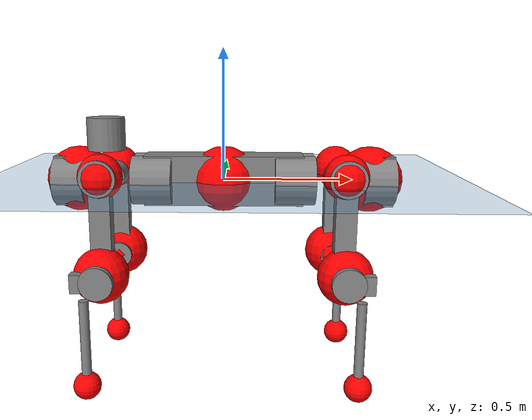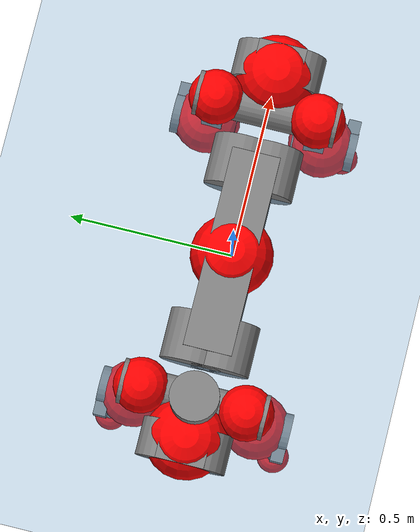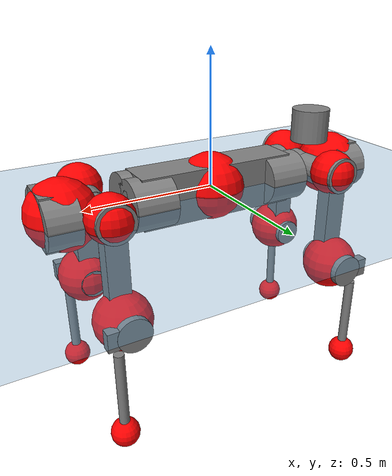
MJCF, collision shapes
<mujoco model="anymal_c">
  <compiler angle="radian" assetdir="assets" balanceinertia="true" inertiafromgeom="false"/>

  <option timestep="0.005" density="1.2" viscosity="2e-05"/>

  <size nkey="1"/>

  <visual>
    <quality shadowsize="8192"/>
    <map shadowclip="0.5"/>
  </visual>

  <default>
    <default class="/">
      <material specular="0" shininess="0.25"/>
      <geom contype="0" conaffinity="0" group="1" solref="-1000 -80"/>
      <site size="0.01 0.005 0.005" group="5"/>
      <general forcelimited="true" forcerange="-80 80" biastype="affine" gainprm="80" biasprm="0 -80 -2"/>
      <default class="anymal_c">
        <joint armature="0.01" damping="0.01" frictionloss="0.1"/>
        <default class="visual">
          <geom type="mesh" group="2"/>
          <default class="visual_zflip"/>
        </default>
        <default class="collision">
          <geom type="cylinder" group="3"/>
          <default class="foot">
            <geom size="0.03 0 0" type="sphere" condim="6" priority="1" friction="0.8 0.02 0.01" solimp="0.015 1 0.03"/>
          </default>
        </default>
      </default>
      <default class="reward_collision_sphere">
        <geom group="5" rgba="1 0 0 1"/>
      </default>
    </default>
  </default>

  <asset>
    <texture type="skybox" colorspace="auto" name="//unnamed_texture_0" builtin="gradient" rgb1="0.95 0.95 0.95" rgb2="0.95 0.95 0.95" width="100" height="600"/>
    <texture type="2d" colorspace="auto" name="texplane" builtin="checker" rgb1="0.345 0.575 0.748" rgb2="0.345 0.575 0.748" markrgb="1 1 1" width="512" height="512"/>
    <texture type="2d" colorspace="linear" name="base" file="base.png"/>
    <texture type="2d" colorspace="linear" name="top_shell" file="top_shell.png"/>
    <texture type="2d" colorspace="linear" name="bottom_shell" file="bottom_shell.png"/>
    <texture type="2d" colorspace="linear" name="remote" file="remote.png"/>
    <texture type="2d" colorspace="linear" name="hatch" file="hatch.png"/>
    <texture type="2d" colorspace="linear" name="handle" file="handle.png"/>
    <texture type="2d" colorspace="linear" name="face" file="face.png"/>
    <texture type="2d" colorspace="linear" name="battery" file="battery.png"/>
    <texture type="2d" colorspace="linear" name="lidar_cage" file="lidar_cage.png"/>
    <texture type="2d" colorspace="linear" name="depth_camera" file="depth_camera.png"/>
    <texture type="2d" colorspace="linear" name="wide_angle_camera" file="wide_angle_camera.png"/>
    <texture type="2d" colorspace="linear" name="lidar" file="lidar.png"/>
    <texture type="2d" colorspace="linear" name="drive" file="drive.png"/>
    <texture type="2d" colorspace="linear" name="hip_l" file="hip_l.png"/>
    <texture type="2d" colorspace="linear" name="shank_l" file="shank_l.png"/>
    <texture type="2d" colorspace="linear" name="foot" file="foot.png"/>
    <texture type="2d" colorspace="linear" name="thigh" file="thigh.png"/>
    <texture type="2d" colorspace="linear" name="shank_r" file="shank_r.png"/>
    <texture type="2d" colorspace="linear" name="hip_r" file="hip_r.png"/>
    <material name="MatPlane" class="/" texture="texplane" texuniform="true" texrepeat="2 2" specular="0.9" shininess="0.5"/>
    <material name="black_plastic" class="/" rgba="0.007 0.007 0.007 1"/>
    <material name="green" class="/" rgba="0.052 0.178 0.033 1"/>
    <material name="red" class="/" rgba="0.178 0.006 0.005 1"/>
    <material name="yellow" class="/" rgba="0.178 0.119 0.006 1"/>
    <material name="lwl" class="/" rgba="0.8 0.8 0.8 1"/>
    <material name="base" class="/" texture="base"/>
    <material name="top_shell" class="/" texture="top_shell"/>
    <material name="bottom_shell" class="/" texture="bottom_shell"/>
    <material name="hip_l" class="/" texture="hip_l"/>
    <material name="thigh" class="/" texture="thigh"/>
    <material name="shank_l" class="/" texture="shank_l"/>
    <material name="foot" class="/" texture="foot"/>
    <material name="hip_r" class="/" texture="hip_r"/>
    <material name="shank" class="/" texture="shank_r"/>
    <material name="hatch" class="/" texture="hatch"/>
    <material name="remote" class="/" texture="remote"/>
    <material name="handle" class="/" texture="handle"/>
    <material name="face" class="/" texture="face"/>
    <material name="depth_camera" class="/" texture="depth_camera"/>
    <material name="wide_angle_camera" class="/" texture="wide_angle_camera"/>
    <material name="battery" class="/" texture="battery"/>
    <material name="lidar_cage" class="/" texture="lidar_cage"/>
    <material name="lidar" class="/" texture="lidar"/>
    <material name="drive" class="/" texture="drive"/>
    <mesh name="base_0" class="/" file="base_0.obj"/>
    <mesh name="base_1" class="/" file="base_1.obj"/>
    <mesh name="base_2" class="/" file="base_2.obj"/>
    <mesh name="base_3" class="/" file="base_3.obj"/>
    <mesh name="base_4" class="/" file="base_4.obj"/>
    <mesh name="base_5" class="/" file="base_5.obj"/>
    <mesh name="top_shell" class="/" file="top_shell.obj"/>
    <mesh name="bottom_shell" class="/" file="bottom_shell.obj"/>
    <mesh name="remote" class="/" file="remote.obj"/>
    <mesh name="handle" class="/" file="handle.obj"/>
    <mesh name="face" class="/" file="face.obj"/>
    <mesh name="wide_angle_camera" class="/" file="wide_angle_camera.obj"/>
    <mesh name="depth_camera" class="/" file="depth_camera.obj"/>
    <mesh name="battery" class="/" file="battery.obj"/>
    <mesh name="lidar_cage" class="/" file="lidar_cage.obj"/>
    <mesh name="lidar" class="/" file="lidar.obj"/>
    <mesh name="drive" class="/" file="drive.obj"/>
    <mesh name="hip_l" class="/" file="hip_l.obj"/>
    <mesh name="thigh" class="/" file="thigh.obj"/>
    <mesh name="shank_l" class="/" file="shank_l.obj"/>
    <mesh name="foot" class="/" file="foot.obj"/>
    <mesh name="hip_r" class="/" file="hip_r.obj"/>
    <mesh name="hatch" class="/" file="hatch.obj"/>
    <mesh name="shank_r" class="/" file="shank_r.obj"/>
  </asset>

  <worldbody>
    <geom name="floor" class="/" size="100 100 0.125" type="plane" group="0" material="MatPlane"/>
    <light name="toplight_shadow" class="/" pos="0 0 5" dir="0.0990148 0.0990148 -0.990148" type="directional" ambient="0.04 0.04 0.04" diffuse="0.55 0.55 0.55" specular="0.12 0.12 0.12"/>
    <light name="toplight_fill" class="/" pos="0 0 5" dir="0.0990148 0.0990148 -0.990148" type="directional" castshadow="false" ambient="0.04 0.04 0.04" diffuse="0.3 0.3 0.3" specular="0.08 0.08 0.08"/>
    <body name="trunk" childclass="anymal_c" pos="0.00213168 0.000726772 0.00271453" quat="0.999999 -0.000865759 -0.000621311 -0.000334144">
      <inertial pos="0.00684087 0.00525506 0.0650703" quat="0.498075 0.498365 0.50096 0.502586" mass="22.5918" diaginertia="1.83864 0.0451369 0.73394"/>
      <joint name="//unnamed_joint_0" type="free" armature="0" damping="0" frictionloss="0"/>
      <geom name="//unnamed_geom_1" class="visual" material="green" mesh="base_0"/>
      <geom name="//unnamed_geom_2" class="visual" material="yellow" mesh="base_1"/>
      <geom name="//unnamed_geom_3" class="visual" material="red" mesh="base_2"/>
      <geom name="//unnamed_geom_4" class="visual" material="black_plastic" mesh="base_3"/>
      <geom name="//unnamed_geom_5" class="visual" material="lwl" mesh="base_4"/>
      <geom name="//unnamed_geom_6" class="visual" material="base" mesh="base_5"/>
      <geom name="trunk_1" class="collision" size="0.305995 0.0738608 0.0949639" type="box"/>
      <geom name="trunk_2" class="collision" size="0.0949639 0.0764987" pos="0.273308 0.0420987 0" quat="0.707107 0 0.707107 0"/>
      <geom name="trunk_3" class="collision" size="0.0949639 0.0764987" pos="-0.273308 0.0420987 0" quat="0.707107 0 0.707107 0"/>
      <geom name="trunk_4" class="collision" size="0.0949639 0.0764987" pos="0.273308 -0.0420987 0" quat="0.707107 0 0.707107 0"/>
      <geom name="trunk_5" class="collision" size="0.0949639 0.0764987" pos="-0.273308 -0.0420987 0" quat="0.707107 0 0.707107 0"/>
      <geom name="//unnamed_geom_12" class="visual" material="top_shell" mesh="top_shell"/>
      <geom name="//unnamed_geom_13" class="visual" material="bottom_shell" mesh="bottom_shell"/>
      <geom name="//unnamed_geom_14" class="visual" material="remote" mesh="remote"/>
      <geom name="//unnamed_geom_15" class="visual" material="handle" mesh="handle"/>
      <geom name="//unnamed_geom_16" class="visual" pos="0.520855 0 0" quat="1 0 0 0" material="face" mesh="face"/>
      <geom name="trunk_6" class="collision" size="0.0580335 0.0738608 0.0949639" pos="0.589967 0 0" type="box"/>
      <geom name="//unnamed_geom_18" class="collision" size="0.0949639 0.0580335" pos="0.589967 0.0420987 0" quat="0.707107 0 0.707107 0"/>
      <geom name="//unnamed_geom_19" class="collision" size="0.0949639 0.0580335" pos="0.589967 -0.0420987 0" quat="0.707107 0 0.707107 0"/>
      <geom name="//unnamed_geom_20" class="visual" pos="0.580105 0 -0.0385648" quat="0.965926 0 0.258819 0" material="depth_camera" mesh="depth_camera"/>
      <geom name="//unnamed_geom_21" class="visual" pos="0.644629 0 0.0195728" material="wide_angle_camera" mesh="wide_angle_camera"/>
      <geom name="//unnamed_geom_22" class="visual_zflip" pos="-0.520855 0 0" quat="0 0 0 1" material="face" mesh="face"/>
      <geom name="trunk_7" class="collision" size="0.0580335 0.0738608 0.0949639" pos="-0.589967 0 0" quat="0 0 0 1" type="box"/>
      <geom name="//unnamed_geom_24" class="collision" size="0.0949639 0.0580335" pos="-0.589967 -0.0420987 0" quat="0 -0.707107 0 0.707107"/>
      <geom name="//unnamed_geom_25" class="collision" size="0.0949639 0.0580335" pos="-0.589967 0.0420987 0" quat="0 -0.707107 0 0.707107"/>
      <geom name="//unnamed_geom_26" class="visual" pos="-0.580105 0 -0.0385648" quat="0 -0.258819 0 0.965926" material="depth_camera" mesh="depth_camera"/>
      <geom name="//unnamed_geom_27" class="visual_zflip" pos="-0.644629 0 0.0195728" quat="0 0 0 1" material="wide_angle_camera" mesh="wide_angle_camera"/>
      <geom name="//unnamed_geom_28" class="visual" material="battery" mesh="battery"/>
      <geom name="//unnamed_geom_29" class="visual" pos="0 0.0373886 0.0375953" quat="0.683013 -0.183013 0.183013 0.683013" material="depth_camera" mesh="depth_camera"/>
      <geom name="//unnamed_geom_30" class="visual" pos="0 -0.0373886 0.0375953" quat="0.683013 0.183013 0.183013 -0.683013" material="depth_camera" mesh="depth_camera"/>
      <geom name="//unnamed_geom_31" class="visual" pos="-0.457397 0 0.0960989" quat="1 0 0 0" material="lidar_cage" mesh="lidar_cage"/>
      <geom name="trunk_8" class="collision" size="0.0738608 0.0633093" pos="-0.457397 0 0.174547"/>
      <geom name="//unnamed_geom_33" class="visual" pos="-0.457397 -0.000257401 0.185922" quat="0.707107 0 0 -0.707107" material="lidar" mesh="lidar"/>
      <geom name="//unnamed_geom_34" class="visual" pos="0.37685 0.0627974 -1.21796e-08" quat="0.258819 0.965926 0 0" material="drive" mesh="drive"/>
      <geom name="//unnamed_geom_35" class="visual" pos="0.37685 -0.0627974 1.21796e-08" quat="0.258819 -0.965926 0 0" material="drive" mesh="drive"/>
      <geom name="//unnamed_geom_36" class="visual" pos="-0.37685 0.0627974 1.21796e-08" quat="0 0 0.965926 -0.258819" material="drive" mesh="drive"/>
      <geom name="//unnamed_geom_37" class="visual" pos="-0.37685 -0.0627974 -1.21796e-08" quat="0 0 -0.965926 -0.258819" material="drive" mesh="drive"/>
      <geom name="//unnamed_geom_38" class="visual" pos="0.145764 0 0.0954452" quat="1 0 0 0" material="hatch" mesh="hatch"/>
      <geom name="//unnamed_geom_39" class="reward_collision_sphere" size="0.126619"/>
      <geom name="//unnamed_geom_40" class="reward_collision_sphere" size="0.126619" pos="0.565464 0 0"/>
      <geom name="//unnamed_geom_41" class="reward_collision_sphere" size="0.126619" pos="-0.565464 0 0"/>
      <site name="imu" pos="0.349041 -0.00628456 0.0345415" size="0.0105515"/>
      <camera name="track" pos="0 -1.20282 0" quat="0.707107 0.707107 0 0" mode="trackcom"/>
      <camera name="ego_camera" pos="0.565464 0 -0.0522987" quat="-0.5 -0.5 0.5 0.5"/>
      <body name="LF_HIP" pos="0.379636 0.0619488 -0.000962549" quat="0.258808 0.965929 -0.000319583 5.55392e-05">
        <inertial pos="0.0657943 -0.00852314 -0.0129193" quat="-0.120173 0.710715 -0.136525 0.679562" mass="3.43044" diaginertia="0.0193553 0.000377296 0.0124904"/>
        <joint name="LF_HAA" pos="0 0 0" axis="0.999866 -0.0146239 0.0073005" range="-0.7596 0.464738" armature="0.00712537" damping="0.0395724" frictionloss="0.0940494"/>
        <geom name="//unnamed_geom_42" class="visual" pos="0 -0.00071647 0.00011768" quat="0.258819 -0.965926 0 0" material="hip_l" mesh="hip_l"/>
        <geom name="//unnamed_geom_43" class="visual" pos="0.0752695 -0.0828295 -0.053044" quat="0.183013 -0.683013 0.683013 0.183013" material="drive" mesh="drive"/>
        <geom name="//unnamed_geom_44" class="collision" size="0.0527577 0.0738608" pos="0.0752695 -0.00719274 -0.00902807" quat="-0.353553 -0.612372 0.612372 -0.353553"/>
        <body name="LF_THIGH" pos="0.0758458 -0.0459583 -0.0552455" quat="0.184266 -0.682759 0.682863 0.183262">
          <inertial pos="0.0389958 0.000569157 -0.326933" quat="0.993977 -0.00273902 -0.0755487 0.0793403" mass="3.60682" diaginertia="0.103862 0.00239919 0.0159049"/>
          <joint name="LF_HFE" pos="0 0 0" axis="0.999351 -0.0137209 -0.0333132" stiffness="0.00800821" range="-3.17923 3.18403" armature="0.0116078" damping="0.000987804" frictionloss="0.132926"/>
          <geom name="//unnamed_geom_45" class="visual" pos="0.0130354 2.05408e-05 0" quat="0.707107 0 0 -0.707107" material="thigh" mesh="thigh"/>
          <geom name="//unnamed_geom_46" class="collision" size="0.0685851 0.0422062" pos="0.0502635 0 0" quat="0.5 0.5 -0.5 -0.5"/>
          <geom name="//unnamed_geom_47" class="collision" size="0.0395683 0.0316546 0.149108" pos="0.0376976 0 -0.184764" quat="0.707107 0 0 -0.707107" type="box"/>
          <geom name="//unnamed_geom_48" class="visual" pos="0.126036 0 -0.372629" quat="1 0 0 0" material="drive" mesh="drive"/>
          <geom name="//unnamed_geom_49" class="collision" size="0.0527577 0.0738608" pos="0.0380746 0 -0.372629" quat="0.707107 0 0.707107 0"/>
          <geom name="//unnamed_geom_50" class="reward_collision_sphere" size="0.0844124" pos="0.0314147 0 0"/>
          <body name="LF_SHANK" pos="0.121803 0.00445446 -0.365415" quat="0.999998 -0.000731869 -0.000155975 0.00191073">
            <inertial pos="0.00514389 -0.0370593 -0.107099" quat="0.992007 -0.123796 -0.00314863 -0.0242042" mass="0.687186" diaginertia="0.0323987 0.00073253 0.00422796"/>
            <joint name="LF_KFE" pos="0 0 0" axis="0.999991 0.00423073 0.000768456" range="-3.09384 3.14773" armature="0.0102698" damping="0.0288113" frictionloss="0.0950281"/>
            <geom name="//unnamed_geom_51" class="visual" pos="0.00425057 0.0226643 0" quat="0.707107 0 0 -0.707107" material="shank_l" mesh="shank_l"/>
            <geom name="LF_kfe_act" class="collision" size="0.0633093 0.0211031" pos="0.0251317 0 0" quat="0.5 0.5 -0.5 -0.5"/>
            <geom name="//unnamed_geom_53" class="collision" size="0.0606703 0.0356115 0.0200479" pos="0.0251317 -0.0345804 0" quat="0.5 0.5 -0.5 -0.5" type="box"/>
            <geom name="//unnamed_geom_54" class="visual" pos="0.0163974 -0.0455902 -0.441885" quat="0.382683 0 0 -0.92388" material="foot" mesh="foot"/>
            <geom name="LF_calf" class="collision" size="0.0184652 0.149043" pos="0.0163985 -0.052894 -0.220943" quat="0.707107 0 0 -0.707107"/>
            <geom name="LF_foot" class="foot" size="0.02813" pos="0.0163985 -0.052894 -0.412467" quat="0.707107 0 0 -0.707107"/>
            <geom name="//unnamed_geom_57" class="reward_collision_sphere" size="0.105515" pos="-0.0628293 0 0"/>
            <geom name="//unnamed_geom_58" class="reward_collision_sphere" size="0.0527577" pos="0.0163985 -0.052894 -0.412467"/>
            <site name="LF_foot" class="foot" pos="0.0163985 -0.052894 -0.412467" quat="0.707107 0 0 -0.707107" size="0.0105515"/>
          </body>
        </body>
      </body>
      <body name="RF_HIP" pos="0.379168 -0.0633548 0.00212434" quat="0.259523 -0.965737 -0.000103043 0.00012172">
        <inertial pos="0.0662869 0.00731765 -0.00889348" quat="0.133837 0.680838 0.127835 0.708665" mass="3.12009" diaginertia="0.0179321 0.00037174 0.0121872"/>
        <joint name="RF_HAA" pos="0 0 0" axis="0.999992 0.00350007 -0.00191223" range="-0.378015 0.762066" armature="0.0131089" damping="0.0114696" frictionloss="0.13357"/>
        <geom name="//unnamed_geom_59" class="visual" pos="0 0.000716465 0.000117679" quat="0.258819 0.965926 0 0" material="hip_r" mesh="hip_r"/>
        <geom name="//unnamed_geom_60" class="visual" pos="0.0752695 0.0828295 -0.053044" quat="0.183013 0.683013 0.683013 -0.183013" material="drive" mesh="drive"/>
        <geom name="//unnamed_geom_61" class="collision" size="0.0527577 0.0738608" pos="0.0752695 0.00719274 -0.00902807" quat="-0.353553 0.612372 0.612372 0.353553"/>
        <body name="RF_THIGH" pos="0.0754427 0.0376717 -0.0545583" quat="0.183308 0.68329 0.682774 -0.182572">
          <inertial pos="0.0391058 0.00235927 -0.323606" quat="0.99233 -0.0154444 -0.0975336 0.0743688" mass="4.06211" diaginertia="0.101678 0.00239449 0.0166379"/>
          <joint name="RF_HFE" pos="0 0 0" axis="0.999848 0.00669059 0.0160922" stiffness="0.00538831" range="-3.28306 3.09368" armature="0.0103735" damping="0.0222424" frictionloss="0.0619247"/>
          <geom name="//unnamed_geom_62" class="visual" pos="0.0130354 2.05408e-05 0" quat="0.707107 0 0 -0.707107" material="thigh" mesh="thigh"/>
          <geom name="//unnamed_geom_63" class="collision" size="0.0685851 0.0422062" pos="0.0502635 0 0" quat="0.5 0.5 0.5 0.5"/>
          <geom name="//unnamed_geom_64" class="collision" size="0.0395683 0.0316546 0.149108" pos="0.0376976 0 -0.184764" quat="0.707107 0 0 0.707107" type="box"/>
          <geom name="//unnamed_geom_65" class="visual" pos="0.126036 0 -0.372629" quat="1 0 0 0" material="drive" mesh="drive"/>
          <geom name="//unnamed_geom_66" class="collision" size="0.0527577 0.0738608" pos="0.0380746 0 -0.372629" quat="0.707107 0 0.707107 0"/>
          <geom name="//unnamed_geom_67" class="reward_collision_sphere" size="0.0844124" pos="0.0314147 0 0"/>
          <body name="RF_SHANK" pos="0.120958 0.00610449 -0.371889" quat="0.999999 -0.000543727 0.000880544 5.45889e-05">
            <inertial pos="0.00728941 0.0351627 -0.11142" quat="0.992554 0.11841 0.00510211 0.0281077" mass="0.677527" diaginertia="0.0349212 0.000769957 0.00440843"/>
            <joint name="RF_KFE" pos="0 0 0" axis="0.999993 -0.000381714 -0.00369832" stiffness="0.00104231" range="-3.10794 3.098" armature="0.00996689" damping="0.0192863" frictionloss="0.140756"/>
            <geom name="//unnamed_geom_68" class="visual" pos="0.00425055 -0.0226642 0" quat="0.707107 0 0 0.707107" material="shank" mesh="shank_r"/>
            <geom name="RF_kfe_act" class="collision" size="0.0633093 0.0211031" pos="0.0251317 0 0" quat="0.5 0.5 0.5 0.5"/>
            <geom name="//unnamed_geom_70" class="collision" size="0.0606703 0.0356115 0.0200479" pos="0.0251317 0.0345804 0" quat="0.5 0.5 0.5 0.5" type="box"/>
            <geom name="//unnamed_geom_71" class="visual" pos="0.0163995 0.0455902 -0.441885" quat="0.382683 0 0 0.92388" material="foot" mesh="foot"/>
            <geom name="RF_calf" class="collision" size="0.0184652 0.149043" pos="0.0163985 0.052894 -0.220943" quat="0.707107 0 0 0.707107"/>
            <geom name="RF_foot" class="foot" size="0.0412045" pos="0.0163985 0.052894 -0.412467" quat="0.707107 0 0 0.707107"/>
            <geom name="//unnamed_geom_74" class="reward_collision_sphere" size="0.105515" pos="-0.0628293 0 0"/>
            <geom name="//unnamed_geom_75" class="reward_collision_sphere" size="0.0527577" pos="0.0163985 0.052894 -0.412467"/>
            <site name="RF_foot" class="foot" pos="0.0163985 0.052894 -0.412467" quat="0.707107 0 0 0.707107" size="0.0105515"/>
          </body>
        </body>
      </body>
      <body name="LH_HIP" pos="-0.369797 0.0629191 0.00138621" quat="0.000104537 -0.000856411 0.965898 -0.25892">
        <inertial pos="0.0711612 0.00348834 -0.00905739" quat="0.128636 0.6833 0.124803 0.707798" mass="3.3126" diaginertia="0.0192187 0.00037492 0.0141729"/>
        <joint name="LH_HAA" pos="0 0 0" axis="0.999988 0.000159996 0.00479443" range="-0.480351 0.885757" armature="0.0136982" damping="0.010859" frictionloss="0.0975286"/>
        <geom name="//unnamed_geom_76" class="visual" pos="0 0.000716465 0.000117679" quat="-0.258819 -0.965926 0 0" material="hip_r" mesh="hip_r"/>
        <geom name="//unnamed_geom_77" class="visual" pos="0.0752695 0.0828295 -0.053044" quat="0.183013 0.683013 0.683013 -0.183013" material="drive" mesh="drive"/>
        <geom name="//unnamed_geom_78" class="collision" size="0.0527577 0.0738608" pos="0.0752695 0.00719274 -0.00902807" quat="-0.353553 0.612372 0.612372 0.353553"/>
        <body name="LH_THIGH" pos="0.0772599 0.051693 -0.0570495" quat="0.183019 0.683003 0.683038 -0.182946">
          <inertial pos="0.0388883 -0.00415159 -0.323288" quat="0.991907 -0.00901229 -0.0798986 0.0982642" mass="3.63992" diaginertia="0.0959169 0.002416 0.0163403"/>
          <joint name="LH_HFE" pos="0 0 0" axis="0.999767 -0.0210535 0.00482071" range="-3.14541 3.09278" armature="0.0108935" damping="0.00768831" frictionloss="0.109852"/>
          <geom name="//unnamed_geom_79" class="visual" pos="0.0130354 2.05408e-05 0" quat="0.707107 0 0 -0.707107" material="thigh" mesh="thigh"/>
          <geom name="//unnamed_geom_80" class="collision" size="0.0685851 0.0422062" pos="0.0502635 0 0" quat="0.5 0.5 -0.5 -0.5"/>
          <geom name="//unnamed_geom_81" class="collision" size="0.0395683 0.0316546 0.149108" pos="0.0376976 0 -0.184764" quat="0.707107 0 0 -0.707107" type="box"/>
          <geom name="//unnamed_geom_82" class="visual" pos="0.126036 0 -0.372629" quat="1 0 0 0" material="drive" mesh="drive"/>
          <geom name="//unnamed_geom_83" class="collision" size="0.0527577 0.0738608" pos="0.0380746 0 -0.372629" quat="0.707107 0 0.707107 0"/>
          <geom name="//unnamed_geom_84" class="reward_collision_sphere" size="0.0844124" pos="0.0314147 0 0"/>
          <body name="LH_SHANK" pos="0.128451 0.000527209 -0.373268" quat="1 -0.000118928 1.38551e-05 -0.000172208">
            <inertial pos="0.00681569 0.0368265 -0.105803" quat="0.987989 0.148042 -0.0213268 0.0388174" mass="0.688023" diaginertia="0.0325169 0.000745423 0.00465858"/>
            <joint name="LH_KFE" pos="0 0 0" axis="0.999855 -0.0124498 -0.0115906" stiffness="0.00526765" range="-3.14443 3.14508" armature="0.0122862" damping="0.00441393" frictionloss="0.0936834"/>
            <geom name="//unnamed_geom_85" class="visual" pos="0.00425055 -0.0226642 0" quat="-0.707107 0 0 -0.707107" material="shank" mesh="shank_r"/>
            <geom name="LH_kfe_act" class="collision" size="0.0633093 0.0211031" pos="0.0251317 0 0" quat="0.5 0.5 -0.5 -0.5"/>
            <geom name="//unnamed_geom_87" class="collision" size="0.0606703 0.0356115 0.0200479" pos="0.0251317 0.0345804 0" quat="0.5 0.5 -0.5 -0.5" type="box"/>
            <geom name="//unnamed_geom_88" class="visual" pos="0.0163995 0.0455902 -0.441885" quat="-0.382683 0 0 -0.92388" material="foot" mesh="foot"/>
            <geom name="LH_calf" class="collision" size="0.0184652 0.149043" pos="0.0163985 0.052894 -0.220943" quat="0.707107 0 0 -0.707107"/>
            <geom name="LH_foot" class="foot" size="0.0196736" pos="0.0163985 0.052894 -0.412467" quat="0.707107 0 0 -0.707107"/>
            <geom name="//unnamed_geom_91" class="reward_collision_sphere" size="0.105515" pos="-0.0628293 0 0"/>
            <geom name="//unnamed_geom_92" class="reward_collision_sphere" size="0.0527577" pos="0.0163985 0.052894 -0.412467"/>
            <site name="LH_foot" class="foot" pos="0.0163985 0.052894 -0.412467" quat="0.707107 0 0 -0.707107" size="0.0105515"/>
          </body>
        </body>
      </body>
      <body name="RH_HIP" pos="-0.376057 -0.056709 -4.92664e-05" quat="0.000813941 -0.000909585 -0.965598 -0.260035">
        <inertial pos="0.0771318 -0.00996341 -0.0157303" quat="-0.127751 0.715126 -0.134849 0.673862" mass="3.29244" diaginertia="0.0184684 0.000390652 0.0137398"/>
        <joint name="RH_HAA" pos="0 0 0" axis="0.999989 -0.00390401 -0.00267902" range="-0.630318 0.349979" armature="0.0111822" damping="0.0207275" frictionloss="0.103158"/>
        <geom name="//unnamed_geom_93" class="visual" pos="0 -0.00071647 0.00011768" quat="-0.258819 0.965926 0 0" material="hip_l" mesh="hip_l"/>
        <geom name="//unnamed_geom_94" class="visual" pos="0.0752695 -0.0828295 -0.053044" quat="-0.183013 0.683013 -0.683013 -0.183013" material="drive" mesh="drive"/>
        <geom name="//unnamed_geom_95" class="collision" size="0.0527577 0.0738608" pos="0.0752695 -0.00719274 -0.00902807" quat="0.353553 0.612372 -0.612372 0.353553"/>
        <body name="RH_THIGH" pos="0.0776448 -0.0430267 -0.0605957" quat="-0.18316 0.682767 -0.683209 -0.18305">
          <inertial pos="0.035879 -0.00208352 -0.319115" quat="0.993163 -0.00518071 -0.080673 0.0842132" mass="4.29909" diaginertia="0.110202 0.00262658 0.0179797"/>
          <joint name="RH_HFE" pos="0 0 0" axis="0.999794 -0.00586564 0.0194384" range="-3.10569 3.14115" armature="0.0103817" damping="0" frictionloss="0.104009"/>
          <geom name="//unnamed_geom_96" class="visual" pos="0.0130354 2.05408e-05 0" quat="0.707107 0 0 -0.707107" material="thigh" mesh="thigh"/>
          <geom name="//unnamed_geom_97" class="collision" size="0.0685851 0.0422062" pos="0.0502635 0 0" quat="0.5 0.5 0.5 0.5"/>
          <geom name="//unnamed_geom_98" class="collision" size="0.0395683 0.0316546 0.149108" pos="0.0376976 0 -0.184764" quat="0.707107 0 0 0.707107" type="box"/>
          <geom name="//unnamed_geom_99" class="visual" pos="0.126036 0 -0.372629" quat="1 0 0 0" material="drive" mesh="drive"/>
          <geom name="//unnamed_geom_100" class="collision" size="0.0527577 0.0738608" pos="0.0380746 0 -0.372629" quat="0.707107 0 0.707107 0"/>
          <geom name="//unnamed_geom_101" class="reward_collision_sphere" size="0.0844124" pos="0.0314147 0 0"/>
          <body name="RH_SHANK" pos="0.131479 -0.00216522 -0.37079" quat="1 -0.000182519 -0.000324088 0.000137259">
            <inertial pos="0.00653917 -0.036482 -0.103615" quat="0.990258 -0.137742 -0.00353928 -0.0200668" mass="0.728688" diaginertia="0.0331629 0.000704974 0.0044663"/>
            <joint name="RH_KFE" pos="0 0 0" axis="0.999551 -0.0299616 -0.000334172" range="-3.16323 3.11461" armature="0.0140834" damping="0.0148009" frictionloss="0.106471"/>
            <geom name="//unnamed_geom_102" class="visual" pos="0.00425057 0.0226643 0" quat="0.707107 0 0 -0.707107" material="shank_l" mesh="shank_l"/>
            <geom name="RH_kfe_act" class="collision" size="0.0633093 0.0211031" pos="0.0251317 0 0" quat="0.5 0.5 0.5 0.5"/>
            <geom name="//unnamed_geom_104" class="collision" size="0.0606703 0.0356115 0.0200479" pos="0.0251317 -0.0345804 0" quat="0.5 0.5 0.5 0.5" type="box"/>
            <geom name="//unnamed_geom_105" class="visual" pos="0.0163974 -0.0455902 -0.441885" quat="0.382683 0 0 -0.92388" material="foot" mesh="foot"/>
            <geom name="RH_calf" class="collision" size="0.0184652 0.149043" pos="0.0163985 -0.052894 -0.220943" quat="0.707107 0 0 0.707107"/>
            <geom name="RH_foot" class="foot" size="0.0342174" pos="0.0163985 -0.052894 -0.412467" quat="0.707107 0 0 0.707107"/>
            <geom name="//unnamed_geom_108" class="reward_collision_sphere" size="0.105515" pos="-0.0628293 0 0"/>
            <geom name="//unnamed_geom_109" class="reward_collision_sphere" size="0.0527577" pos="0.0163985 -0.052894 -0.412467"/>
            <site name="RH_foot" class="foot" pos="0.0163985 -0.052894 -0.412467" quat="0.707107 0 0 0.707107" size="0.0105515"/>
          </body>
        </body>
      </body>
    </body>
  </worldbody>

  <contact>
    <pair class="/" geom1="floor" geom2="LF_foot" name="//unnamed_contact_0"/>
    <pair class="/" geom1="floor" geom2="RF_foot" name="//unnamed_contact_1"/>
    <pair class="/" geom1="floor" geom2="LH_foot" name="//unnamed_contact_2"/>
    <pair class="/" geom1="floor" geom2="RH_foot" name="//unnamed_contact_3"/>
  </contact>

  <actuator>
    <general name="LF_HAA" class="/" joint="LF_HAA" forcerange="-78.4328 78.4328" gainprm="59.8331" biasprm="0 -59.8331 -2.11426"/>
    <general name="LF_HFE" class="/" joint="LF_HFE" forcerange="-88.5974 88.5974" gainprm="59.8331" biasprm="0 -59.8331 -2.11426"/>
    <general name="LF_KFE" class="/" joint="LF_KFE" forcerange="-82.5764 82.5764" gainprm="59.8331" biasprm="0 -59.8331 -2.11426"/>
    <general name="RF_HAA" class="/" joint="RF_HAA" forcerange="-90.4463 90.4463" gainprm="59.8331" biasprm="0 -59.8331 -2.11426"/>
    <general name="RF_HFE" class="/" joint="RF_HFE" forcerange="-84.5029 84.5029" gainprm="59.8331" biasprm="0 -59.8331 -2.11426"/>
    <general name="RF_KFE" class="/" joint="RF_KFE" forcerange="-100.312 100.312" gainprm="59.8331" biasprm="0 -59.8331 -2.11426"/>
    <general name="LH_HAA" class="/" joint="LH_HAA" forcerange="-84.2592 84.2592" gainprm="59.8331" biasprm="0 -59.8331 -2.11426"/>
    <general name="LH_HFE" class="/" joint="LH_HFE" forcerange="-101.015 101.015" gainprm="59.8331" biasprm="0 -59.8331 -2.11426"/>
    <general name="LH_KFE" class="/" joint="LH_KFE" forcerange="-82.6445 82.6445" gainprm="59.8331" biasprm="0 -59.8331 -2.11426"/>
    <general name="RH_HAA" class="/" joint="RH_HAA" forcerange="-81.3009 81.3009" gainprm="59.8331" biasprm="0 -59.8331 -2.11426"/>
    <general name="RH_HFE" class="/" joint="RH_HFE" forcerange="-105.374 105.374" gainprm="59.8331" biasprm="0 -59.8331 -2.11426"/>
    <general name="RH_KFE" class="/" joint="RH_KFE" forcerange="-70.5842 70.5842" gainprm="59.8331" biasprm="0 -59.8331 -2.11426"/>
  </actuator>

  <sensor>
    <gyro site="imu" name="imu_angular_velocity"/>
    <velocimeter site="imu" name="imu_linear_velocity"/>
    <framelinvel objtype="site" objname="LF_foot" name="LF_foot_global_linear_velocity"/>
    <framelinvel objtype="site" objname="RF_foot" name="RF_foot_global_linear_velocity"/>
    <framelinvel objtype="site" objname="LH_foot" name="LH_foot_global_linear_velocity"/>
    <framelinvel objtype="site" objname="RH_foot" name="RH_foot_global_linear_velocity"/>
  </sensor>

  <keyframe>
    <key name="home" qpos="0 0 0.55 1 0 0 0 0 0.4 -0.8 0 -0.4 0.8 0 -0.4 0.8 0 0.4 -0.8"/>
  </keyframe>
</mujoco>
